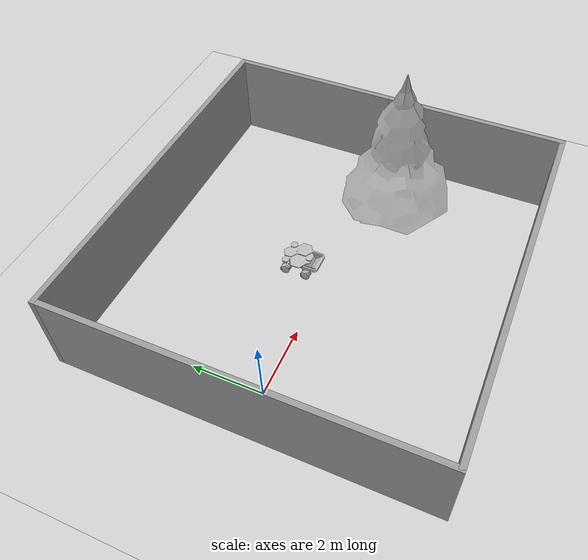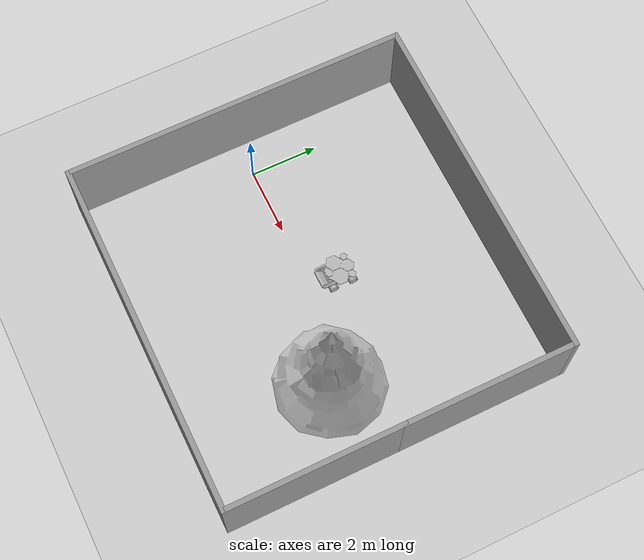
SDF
<sdf version="1.7">
 <world name="default">
  <light name="sun" type="directional">
   <pose>0 0 10 0 -0 0</pose>
   <diffuse>0.8 0.8 0.8 1</diffuse>
   <specular>0.2 0.2 0.2 1</specular>
   <attenuation>
    <range>1000</range>
    <constant>0.9</constant>
    <linear>0.01</linear>
    <quadratic>0.001</quadratic>
   </attenuation>
   <direction>-0.5 0.1 -0.9</direction>
   <spot><inner_angle>0</inner_angle><outer_angle>0</outer_angle><falloff>0</falloff></spot>
  </light>
  <include><uri>model://mars_rover</uri><name>hazard_rover</name><pose>4.0 0.8 0.1 0 0 1.57</pose></include>
  <include><uri>model://pine_tree</uri><name>indoor_pinetree</name><pose>7.0 -0.9 0 0 0 0</pose></include>
  <model name="ground_plane">
   <static>1</static>
   <link name="link">
    <collision name="collision">
     <geometry><plane><normal>0 0 1</normal><size>100 100</size></plane></geometry>
     <surface><friction><ode><mu>100</mu><mu2>50</mu2></ode></friction></surface>
    </collision>
    <visual name="visual">
     <cast_shadows>0</cast_shadows>
     <geometry><plane><normal>0 0 1</normal><size>100 100</size></plane></geometry>
     <material>
      <script><uri>file://media/materials/scripts/gazebo.material</uri><name>Gazebo/Grey</name></script>
     </material>
    </visual>
   </link>
  </model>
  <gravity>0 0 -9.8</gravity>
  <magnetic_field>6e-06 2.3e-05 -4.2e-05</magnetic_field>
  <atmosphere type="adiabatic"/>
  <physics type="ode">
   <max_step_size>0.001</max_step_size>
   <real_time_factor>1</real_time_factor>
   <real_time_update_rate>1000</real_time_update_rate>
  </physics>
  <scene><ambient>0.4 0.4 0.4 1</ambient><background>0.7 0.7 0.7 1</background><shadows>1</shadows></scene>
  <spherical_coordinates>
   <surface_model>EARTH_WGS84</surface_model>
   <latitude_deg>0</latitude_deg>
   <longitude_deg>0</longitude_deg>
   <elevation>0</elevation>
   <heading_deg>0</heading_deg>
  </spherical_coordinates>
  <model name="walls">
   <pose>4.06158 0.077644 0 0 -0 0</pose>
   <link name="Wall_1">
    <collision name="Wall_1_Collision">
     <geometry><box><size>10.25 0.15 2.5</size></box></geometry>
     <pose>0 0 1.25 0 -0 0</pose>
    </collision>
    <visual name="Wall_1_Visual">
     <pose>0 0 1.25 0 -0 0</pose>
     <geometry><box><size>10.25 0.15 2.5</size></box></geometry>
     <material>
      <script><uri>file://media/materials/scripts/gazebo.material</uri><name>Gazebo/Grey</name></script>
      <ambient>1 1 1 1</ambient>
     </material>
     <meta><layer>0</layer></meta>
    </visual>
    <pose>-5.175 0 0 0 -0 -1.5708</pose>
   </link>
   <link name="Wall_2">
    <collision name="Wall_2_Collision">
     <geometry><box><size>10.5 0.15 2.5</size></box></geometry>
     <pose>0 0 1.25 0 -0 0</pose>
    </collision>
    <visual name="Wall_2_Visual">
     <pose>0 0 1.25 0 -0 0</pose>
     <geometry><box><size>10.5 0.15 2.5</size></box></geometry>
     <material>
      <script><uri>file://media/materials/scripts/gazebo.material</uri><name>Gazebo/Grey</name></script>
      <ambient>1 1 1 1</ambient>
     </material>
     <meta><layer>0</layer></meta>
    </visual>
    <pose>0 -5.05 0 0 -0 0</pose>
   </link>
   <link name="Wall_3">
    <collision name="Wall_3_Collision">
     <geometry><box><size>5.25 0.15 2.5</size></box></geometry>
     <pose>0 0 1.25 0 -0 0</pose>
    </collision>
    <visual name="Wall_3_Visual">
     <pose>0 0 1.25 0 -0 0</pose>
     <geometry><box><size>5.25 0.15 2.5</size></box></geometry>
     <material>
      <script><uri>file://media/materials/scripts/gazebo.material</uri><name>Gazebo/Grey</name></script>
      <ambient>1 1 1 1</ambient>
     </material>
     <meta><layer>0</layer></meta>
    </visual>
    <pose>5.175 -2.5 0 0 -0 1.5708</pose>
   </link>
   <link name="Wall_4">
    <collision name="Wall_4_Collision">
     <geometry><box><size>5 0.15 2.5</size></box></geometry>
     <pose>0 0 1.25 0 -0 0</pose>
    </collision>
    <visual name="Wall_4_Visual">
     <pose>0 0 1.25 0 -0 0</pose>
     <geometry><box><size>5 0.15 2.5</size></box></geometry>
     <material>
      <script><uri>file://media/materials/scripts/gazebo.material</uri><name>Gazebo/Grey</name></script>
      <ambient>1 1 1 1</ambient>
     </material>
     <meta><layer>0</layer></meta>
    </visual>
    <pose>5.175 2.475 0 0 -0 1.5708</pose>
   </link>
   <link name="Wall_8">
    <collision name="Wall_8_Collision">
     <geometry><box><size>10.5 0.15 2.5</size></box></geometry>
     <pose>0 0 1.25 0 -0 0</pose>
    </collision>
    <visual name="Wall_8_Visual">
     <pose>0 0 1.25 0 -0 0</pose>
     <geometry><box><size>10.5 0.15 2.5</size></box></geometry>
     <material>
      <script><uri>file://media/materials/scripts/gazebo.material</uri><name>Gazebo/Grey</name></script>
      <ambient>1 1 1 1</ambient>
     </material>
     <meta><layer>0</layer></meta>
    </visual>
    <pose>0 5.05 0 0 -0 0</pose>
   </link>
   <static>1</static>
  </model>
 </world>
</sdf>

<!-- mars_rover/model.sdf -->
<sdf version="1.6">
  <model name="mars_rover">
    <static>false</static>
    <link name="link">
      <collision name="solar_panel_collision">
        <pose>0 -0.06945 0.47293 0 0 0</pose>
        <geometry>
          <box>
            <size>0.87974 0.8821 0.02602</size>
          </box>
        </geometry>
      </collision>

      <collision name="chassis_collision">
        <pose>0 -0.05 0.31475 0 0 0</pose>
        <geometry>
          <box>
            <size>0.49522 0.67401 0.28915</size>
          </box>
        </geometry>
      </collision>

      <collision name="rear_left_bumper_collision">
        <pose>0.30107 0.38350 0.38976 0 0 0</pose>
        <geometry>
          <box>
            <size>0.04442 0.388970 0.07918</size>
          </box>
        </geometry>
      </collision>

      <collision name="rear_right_bumper_collision">
        <pose>-0.30107 0.38350 0.38976 0 0 0</pose>
        <geometry>
          <box>
            <size>0.04442 0.388970 0.07918</size>
          </box>
        </geometry>
      </collision>

      <collision name="rear_bumper_collision">
        <pose>0 0.59414 0.38976 0 0 0</pose>
        <geometry>
          <box>
            <size>0.566560 0.04442 0.07918</size>
          </box>
        </geometry>
      </collision>

      <collision name="bin_back_panel_collision">
        <pose>0 0.47 0.32114 0.69137 0 0</pose>
        <geometry>
          <box>
            <size>0.43774 0.212366009 0.05173</size>
          </box>
        </geometry>
      </collision>

      <collision name="bin_left_panel_collision1">
        <pose>0.22615 0.328970 0.33193 0 0 0</pose>
        <geometry>
          <box>
            <size>0.01116 0.19338 0.16304</size>
          </box>
        </geometry>
      </collision>

      <collision name="bin_left_panel_collision2">
        <pose>0.22615 0.471 0.393080 0 0 0</pose>
        <geometry>
          <box>
            <size>0.01116 0.15 0.04</size>
          </box>
        </geometry>
      </collision>

      <collision name="bin_left_panel_collision3">
        <pose>0.22615 0.450 0.353080 0 0 0</pose>
        <geometry>
          <box>
            <size>0.01116 0.15 0.04</size>
          </box>
        </geometry>
      </collision>

      <collision name="bin_left_panel_collision4">
        <pose>0.22615 0.39308 0.313080 0 0 0</pose>
        <geometry>
          <box>
            <size>0.01116 0.15 0.04</size>
          </box>
        </geometry>
      </collision>

      <collision name="bin_right_panel_collision1">
        <pose>-0.22615 0.328970 0.33193 0 0 0</pose>
        <geometry>
          <box>
            <size>0.01116 0.19338 0.16304</size>
          </box>
        </geometry>
      </collision>

      <collision name="bin_right_panel_collision2">
        <pose>-0.22615 0.471 0.393080 0 0 0</pose>
        <geometry>
          <box>
            <size>0.01116 0.15 0.04</size>
          </box>
        </geometry>
      </collision>

      <collision name="bin_right_panel_collision3">
        <pose>-0.22615 0.450 0.353080 0 0 0</pose>
        <geometry>
          <box>
            <size>0.01116 0.15 0.04</size>
          </box>
        </geometry>
      </collision>

      <collision name="bin_right_panel_collision4">
        <pose>-0.22615 0.39308 0.313080 0 0 0</pose>
        <geometry>
          <box>
            <size>0.01116 0.15 0.04</size>
          </box>
        </geometry>
      </collision>

      <collision name="bin_front_panel_collision">
        <pose>0 0.300470 0.32114 2.26207 0 0</pose>
        <geometry>
          <box>
            <size>0.43774 0.212366009 0.05173</size>
          </box>
        </geometry>
      </collision>

      <collision name="front_left_wheel_collision">
        <pose>0.31103 -0.32115 0.13580 1.5707 0 1.5707</pose>
        <geometry>
          <cylinder>
            <radius>0.1358</radius>
            <length>0.1641</length>
          </cylinder>
        </geometry>
      </collision>
      <collision name="front_right_wheel_collision">
        <pose>-0.31103 -0.32115 0.13580 1.5707 0 1.5707</pose>
        <geometry>
          <cylinder>
            <radius>0.1358</radius>
            <length>0.1641</length>
          </cylinder>
        </geometry>
      </collision>

      <collision name="rear_left_wheel_collision">
        <pose>0.31103 0.28049 0.13580 1.5707 0 1.5707</pose>
        <geometry>
          <cylinder>
            <radius>0.1358</radius>
            <length>0.1641</length>
          </cylinder>
        </geometry>
      </collision>

      <collision name="rear_right_wheel_collision">
        <pose>-0.31103 0.28049 0.13580 1.5707 0 1.5707</pose>
        <geometry>
          <cylinder>
            <radius>0.1358</radius>
            <length>0.1641</length>
          </cylinder>
        </geometry>
      </collision>

      <visual name="visual">
        <pose>0 0 0 0 0 1.57</pose>
        <geometry>
          <mesh>
            <uri>model://mars_rover/meshes/rover.dae</uri>
          </mesh>
        </geometry>
      </visual>
    </link>
  </model>
</sdf>

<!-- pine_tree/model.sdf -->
<sdf version="1.6">
  <model name="pine_tree">
    <static>true</static>
    <link name="link">
      <collision name="collision">
        <geometry>
          <mesh>
            <uri>file://isr-testbed/pine_tree/meshes/pine_tree.dae</uri>
          </mesh>
        </geometry>
      </collision>
      <visual name="branch">
        <geometry>
          <mesh>
            <uri>file://isr-testbed/pine_tree/meshes/pine_tree.dae</uri>
            <submesh>
              <name>Branch</name>
            </submesh>
          </mesh>
        </geometry>
        <material>
          <script>
            <uri>file://isr-testbed/pine_tree/materials/scripts/</uri>
            <uri>file://isr-testbed/pine_tree/materials/textures/</uri>
            <name>PineTree/Branch</name>
          </script>
        </material>
      </visual>
      <visual name="bark">
        <geometry>
          <mesh>
            <uri>file://isr-testbed/pine_tree/meshes/pine_tree.dae</uri>
            <submesh>
              <name>Bark</name>
            </submesh>
          </mesh>
        </geometry>
        <material>
          <script>
            <uri>file://isr-testbed/pine_tree/materials/scripts/</uri>
            <uri>file://isr-testbed/pine_tree/materials/textures/</uri>
            <name>PineTree/Bark</name>
          </script>
        </material>
      </visual>
    </link>
  </model>
</sdf>
